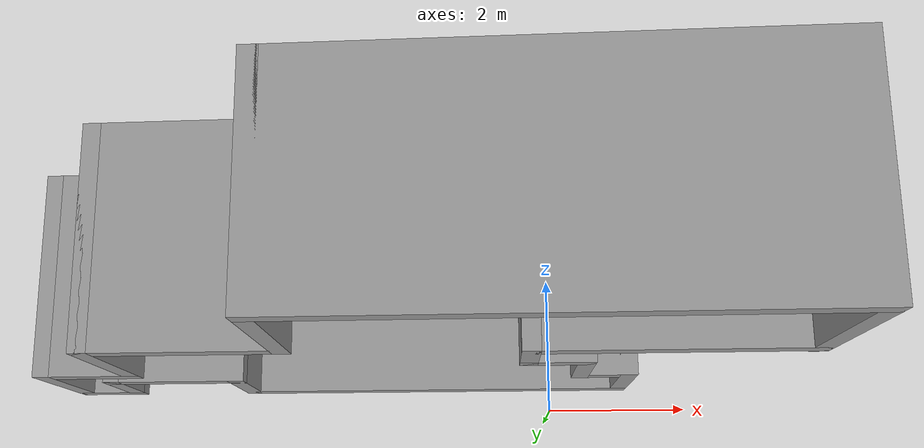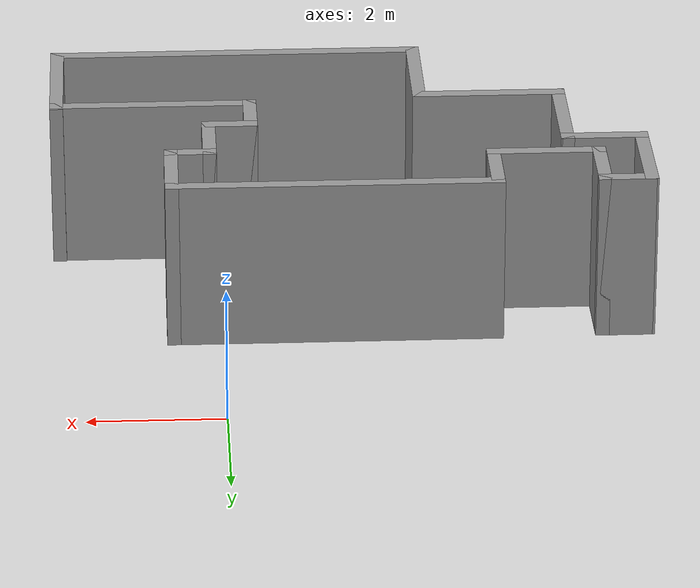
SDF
<?xml version='1.0'?>
<sdf version='1.4'>
  <model name='model'>
    <link name='Wall_1'>
      <collision name='Wall_1_Collision'>
        <geometry>
          <box>
            <size>1.68 0.2 2.5</size>
          </box>
        </geometry>
        <pose>0 0 1.25 0 -0 0</pose>
      </collision>
      <visual name='Wall_1_Visual'>
        <pose>0 0 1.25 0 -0 0</pose>
        <geometry>
          <box>
            <size>1.68 0.2 2.5</size>
          </box>
        </geometry>
        <material>
          <script>
            <uri>file://media/materials/scripts/gazebo.material</uri>
            <name>Gazebo/Grey</name>
          </script>
        </material>
      </visual>
      <velocity_decay>
        <linear>0</linear>
        <angular>0</angular>
      </velocity_decay>
      <pose>-6.21 -3.26 0 0 0 -1.5708</pose>
    </link>
    <link name='Wall_10'>
      <collision name='Wall_10_Collision'>
        <geometry>
          <box>
            <size>0.97 0.2 2.5</size>
          </box>
        </geometry>
        <pose>0 0 1.25 0 -0 0</pose>
      </collision>
      <visual name='Wall_10_Visual'>
        <pose>0 0 1.25 0 -0 0</pose>
        <geometry>
          <box>
            <size>0.97 0.2 2.5</size>
          </box>
        </geometry>
        <material>
          <script>
            <uri>file://media/materials/scripts/gazebo.material</uri>
            <name>Gazebo/Grey</name>
          </script>
        </material>
      </visual>
      <velocity_decay>
        <linear>0</linear>
        <angular>0</angular>
      </velocity_decay>
      <pose>-0.48 -5.055 0 0 -0 1.5708</pose>
    </link>
    <link name='Wall_11'>
      <collision name='Wall_11_Collision'>
        <geometry>
          <box>
            <size>0.83 0.2 2.5</size>
          </box>
        </geometry>
        <pose>0 0 1.25 0 -0 0</pose>
      </collision>
      <visual name='Wall_11_Visual'>
        <pose>0 0 1.25 0 -0 0</pose>
        <geometry>
          <box>
            <size>0.83 0.2 2.5</size>
          </box>
        </geometry>
        <material>
          <script>
            <uri>file://media/materials/scripts/gazebo.material</uri>
            <name>Gazebo/Grey</name>
          </script>
        </material>
      </visual>
      <velocity_decay>
        <linear>0</linear>
        <angular>0</angular>
      </velocity_decay>
      <pose>-0.165 -4.67 0 0 -0 0</pose>
    </link>
    <link name='Wall_12'>
      <collision name='Wall_12_Collision'>
        <geometry>
          <box>
            <size>1.19 0.2 2.5</size>
          </box>
        </geometry>
        <pose>0 0 1.25 0 -0 0</pose>
      </collision>
      <visual name='Wall_12_Visual'>
        <pose>0 0 1.25 0 -0 0</pose>
        <geometry>
          <box>
            <size>1.19 0.2 2.5</size>
          </box>
        </geometry>
        <material>
          <script>
            <uri>file://media/materials/scripts/gazebo.material</uri>
            <name>Gazebo/Grey</name>
          </script>
        </material>
      </visual>
      <velocity_decay>
        <linear>0</linear>
        <angular>0</angular>
      </velocity_decay>
      <pose>0.15 -4.175 0 0 -0 1.5708</pose>
    </link>
    <link name='Wall_13'>
      <collision name='Wall_13_Collision'>
        <geometry>
          <box>
            <size>0.77 0.2 2.5</size>
          </box>
        </geometry>
        <pose>0 0 1.25 0 -0 0</pose>
      </collision>
      <visual name='Wall_13_Visual'>
        <pose>0 0 1.25 0 -0 0</pose>
        <geometry>
          <box>
            <size>0.77 0.2 2.5</size>
          </box>
        </geometry>
        <material>
          <script>
            <uri>file://media/materials/scripts/gazebo.material</uri>
            <name>Gazebo/Grey</name>
          </script>
        </material>
      </visual>
      <velocity_decay>
        <linear>0</linear>
        <angular>0</angular>
      </velocity_decay>
      <pose>0.435 -3.68 0 0 -0 0</pose>
    </link>
    <link name='Wall_14'>
      <collision name='Wall_14_Collision'>
        <geometry>
          <box>
            <size>1.39 0.2 2.5</size>
          </box>
        </geometry>
        <pose>0 0 1.25 0 -0 0</pose>
      </collision>
      <visual name='Wall_14_Visual'>
        <pose>0 0 1.25 0 -0 0</pose>
        <geometry>
          <box>
            <size>1.39 0.2 2.5</size>
          </box>
        </geometry>
        <material>
          <script>
            <uri>file://media/materials/scripts/gazebo.material</uri>
            <name>Gazebo/Grey</name>
          </script>
        </material>
      </visual>
      <velocity_decay>
        <linear>0</linear>
        <angular>0</angular>
      </velocity_decay>
      <pose>0.72 -3.085 0 0 -0 1.5708</pose>
    </link>
    <link name='Wall_15'>
      <collision name='Wall_15_Collision'>
        <geometry>
          <box>
            <size>4.91 0.2 2.5</size>
          </box>
        </geometry>
        <pose>0 0 1.25 0 -0 0</pose>
      </collision>
      <visual name='Wall_15_Visual'>
        <pose>0 0 1.25 0 -0 0</pose>
        <geometry>
          <box>
            <size>4.91 0.2 2.5</size>
          </box>
        </geometry>
        <material>
          <script>
            <uri>file://media/materials/scripts/gazebo.material</uri>
            <name>Gazebo/Grey</name>
          </script>
        </material>
      </visual>
      <velocity_decay>
        <linear>0</linear>
        <angular>0</angular>
      </velocity_decay>
      <pose>-1.635 -2.49 0 0 -0 3.14159</pose>
    </link>
    <link name='Wall_16'>
      <collision name='Wall_16_Collision'>
        <geometry>
          <box>
            <size>1.21 0.2 2.5</size>
          </box>
        </geometry>
        <pose>0 0 1.25 0 -0 0</pose>
      </collision>
      <visual name='Wall_16_Visual'>
        <pose>0 0 1.25 0 -0 0</pose>
        <geometry>
          <box>
            <size>1.21 0.2 2.5</size>
          </box>
        </geometry>
        <material>
          <script>
            <uri>file://media/materials/scripts/gazebo.material</uri>
            <name>Gazebo/Grey</name>
          </script>
        </material>
      </visual>
      <velocity_decay>
        <linear>0</linear>
        <angular>0</angular>
      </velocity_decay>
      <pose>-3.99 -2.995 0 0 0 -1.5708</pose>
    </link>
    <link name='Wall_17'>
      <collision name='Wall_17_Collision'>
        <geometry>
          <box>
            <size>1.75 0.2 2.5</size>
          </box>
        </geometry>
        <pose>0 0 1.25 0 -0 0</pose>
      </collision>
      <visual name='Wall_17_Visual'>
        <pose>0 0 1.25 0 -0 0</pose>
        <geometry>
          <box>
            <size>1.75 0.2 2.5</size>
          </box>
        </geometry>
        <material>
          <script>
            <uri>file://media/materials/scripts/gazebo.material</uri>
            <name>Gazebo/Grey</name>
          </script>
        </material>
      </visual>
      <velocity_decay>
        <linear>0</linear>
        <angular>0</angular>
      </velocity_decay>
      <pose>-4.765 -3.5 0 0 -0 3.14159</pose>
    </link>
    <link name='Wall_18'>
      <collision name='Wall_18_Collision'>
        <geometry>
          <box>
            <size>1.18 0.2 2.5</size>
          </box>
        </geometry>
        <pose>0 0 1.25 0 -0 0</pose>
      </collision>
      <visual name='Wall_18_Visual'>
        <pose>0 0 1.25 0 -0 0</pose>
        <geometry>
          <box>
            <size>1.18 0.2 2.5</size>
          </box>
        </geometry>
        <material>
          <script>
            <uri>file://media/materials/scripts/gazebo.material</uri>
            <name>Gazebo/Grey</name>
          </script>
        </material>
      </visual>
      <velocity_decay>
        <linear>0</linear>
        <angular>0</angular>
      </velocity_decay>
      <pose>-5.54 -3.01 0 0 -0 1.5708</pose>
    </link>
    <link name='Wall_19'>
      <collision name='Wall_19_Collision'>
        <geometry>
          <box>
            <size>0.84 0.2 2.5</size>
          </box>
        </geometry>
        <pose>0 0 1.25 0 -0 0</pose>
      </collision>
      <visual name='Wall_19_Visual'>
        <pose>0 0 1.25 0 -0 0</pose>
        <geometry>
          <box>
            <size>0.84 0.2 2.5</size>
          </box>
        </geometry>
        <material>
          <script>
            <uri>file://media/materials/scripts/gazebo.material</uri>
            <name>Gazebo/Grey</name>
          </script>
        </material>
      </visual>
      <velocity_decay>
        <linear>0</linear>
        <angular>0</angular>
      </velocity_decay>
      <pose>-5.86 -2.52 0 0 -0 3.14159</pose>
    </link>
    <link name='Wall_2'>
      <collision name='Wall_2_Collision'>
        <geometry>
          <box>
            <size>1.29 0.2 2.5</size>
          </box>
        </geometry>
        <pose>0 0 1.25 0 -0 0</pose>
      </collision>
      <visual name='Wall_2_Visual'>
        <pose>0 0 1.25 0 -0 0</pose>
        <geometry>
          <box>
            <size>1.29 0.2 2.5</size>
          </box>
        </geometry>
        <material>
          <script>
            <uri>file://media/materials/scripts/gazebo.material</uri>
            <name>Gazebo/Grey</name>
          </script>
        </material>
      </visual>
      <velocity_decay>
        <linear>0</linear>
        <angular>0</angular>
      </velocity_decay>
      <pose>-5.665 -4 0 0 -0 0</pose>
    </link>
    <link name='Wall_3'>
      <collision name='Wall_3_Collision'>
        <geometry>
          <box>
            <size>1.84 0.2 2.5</size>
          </box>
        </geometry>
        <pose>0 0 1.25 0 -0 0</pose>
      </collision>
      <visual name='Wall_3_Visual'>
        <pose>0 0 1.25 0 -0 0</pose>
        <geometry>
          <box>
            <size>1.84 0.2 2.5</size>
          </box>
        </geometry>
        <material>
          <script>
            <uri>file://media/materials/scripts/gazebo.material</uri>
            <name>Gazebo/Grey</name>
          </script>
        </material>
      </visual>
      <velocity_decay>
        <linear>0</linear>
        <angular>0</angular>
      </velocity_decay>
      <pose>-5.12 -4.82 0 0 0 -1.5708</pose>
    </link>
    <link name='Wall_4'>
      <collision name='Wall_4_Collision'>
        <geometry>
          <box>
            <size>2.29 0.2 2.5</size>
          </box>
        </geometry>
        <pose>0 0 1.25 0 -0 0</pose>
      </collision>
      <visual name='Wall_4_Visual'>
        <pose>0 0 1.25 0 -0 0</pose>
        <geometry>
          <box>
            <size>2.29 0.2 2.5</size>
          </box>
        </geometry>
        <material>
          <script>
            <uri>file://media/materials/scripts/gazebo.material</uri>
            <name>Gazebo/Grey</name>
          </script>
        </material>
      </visual>
      <velocity_decay>
        <linear>0</linear>
        <angular>0</angular>
      </velocity_decay>
      <pose>-4.075 -5.64 0 0 -0 0</pose>
    </link>
    <link name='Wall_5'>
      <collision name='Wall_5_Collision'>
        <geometry>
          <box>
            <size>1.92 0.2 2.5</size>
          </box>
        </geometry>
        <pose>0 0 1.25 0 -0 0</pose>
      </collision>
      <visual name='Wall_5_Visual'>
        <pose>0 0 1.25 0 -0 0</pose>
        <geometry>
          <box>
            <size>1.92 0.2 2.5</size>
          </box>
        </geometry>
        <material>
          <script>
            <uri>file://media/materials/scripts/gazebo.material</uri>
            <name>Gazebo/Grey</name>
          </script>
        </material>
      </visual>
      <velocity_decay>
        <linear>0</linear>
        <angular>0</angular>
      </velocity_decay>
      <pose>-3.03 -6.5 0 0 0 -1.5708</pose>
    </link>
    <link name='Wall_6'>
      <collision name='Wall_6_Collision'>
        <geometry>
          <box>
            <size>5.63 0.2 2.5</size>
          </box>
        </geometry>
        <pose>0 0 1.25 0 -0 0</pose>
      </collision>
      <visual name='Wall_6_Visual'>
        <pose>0 0 1.25 0 -0 0</pose>
        <geometry>
          <box>
            <size>5.63 0.2 2.5</size>
          </box>
        </geometry>
        <material>
          <script>
            <uri>file://media/materials/scripts/gazebo.material</uri>
            <name>Gazebo/Grey</name>
          </script>
        </material>
      </visual>
      <velocity_decay>
        <linear>0</linear>
        <angular>0</angular>
      </velocity_decay>
      <pose>-0.315 -7.36 0 0 -0 0</pose>
    </link>
    <link name='Wall_7'>
      <collision name='Wall_7_Collision'>
        <geometry>
          <box>
            <size>2.15 0.2 2.5</size>
          </box>
        </geometry>
        <pose>0 0 1.25 0 -0 0</pose>
      </collision>
      <visual name='Wall_7_Visual'>
        <pose>0 0 1.25 0 -0 0</pose>
        <geometry>
          <box>
            <size>2.15 0.2 2.5</size>
          </box>
        </geometry>
        <material>
          <script>
            <uri>file://media/materials/scripts/gazebo.material</uri>
            <name>Gazebo/Grey</name>
          </script>
        </material>
      </visual>
      <velocity_decay>
        <linear>0</linear>
        <angular>0</angular>
      </velocity_decay>
      <pose>2.4 -6.385 0 0 -0 1.5708</pose>
    </link>
    <link name='Wall_9'>
      <collision name='Wall_9_Collision'>
        <geometry>
          <box>
            <size>3.08 0.2 2.5</size>
          </box>
        </geometry>
        <pose>0 0 1.25 0 -0 0</pose>
      </collision>
      <visual name='Wall_9_Visual'>
        <pose>0 0 1.25 0 -0 0</pose>
        <geometry>
          <box>
            <size>3.08 0.2 2.5</size>
          </box>
        </geometry>
        <material>
          <script>
            <uri>file://media/materials/scripts/gazebo.material</uri>
            <name>Gazebo/Grey</name>
          </script>
        </material>
      </visual>
      <velocity_decay>
        <linear>0</linear>
        <angular>0</angular>
      </velocity_decay>
      <pose>0.96 -5.44 0 0 -0 3.14159</pose>
    </link>
    <static>1</static>
  </model>
</sdf>
